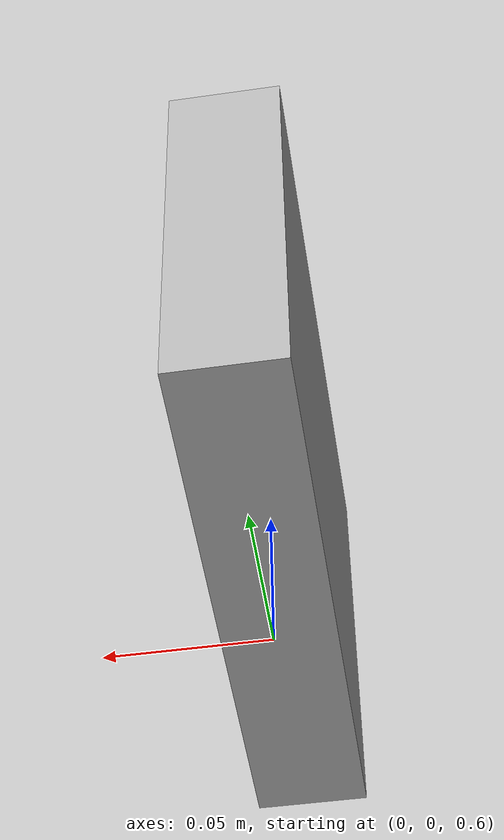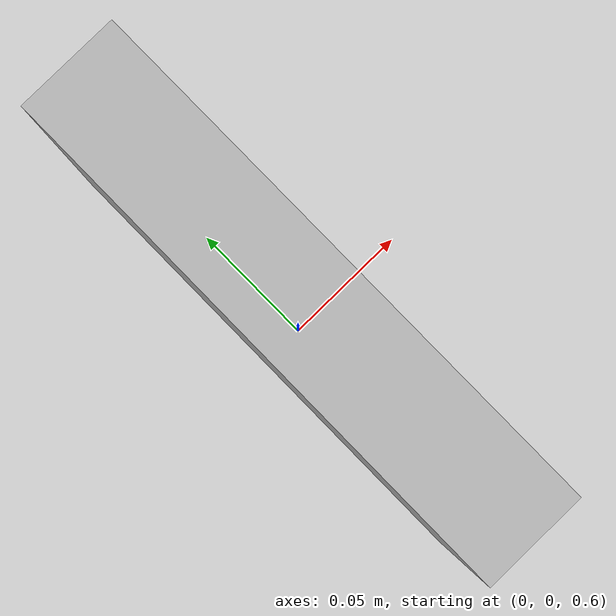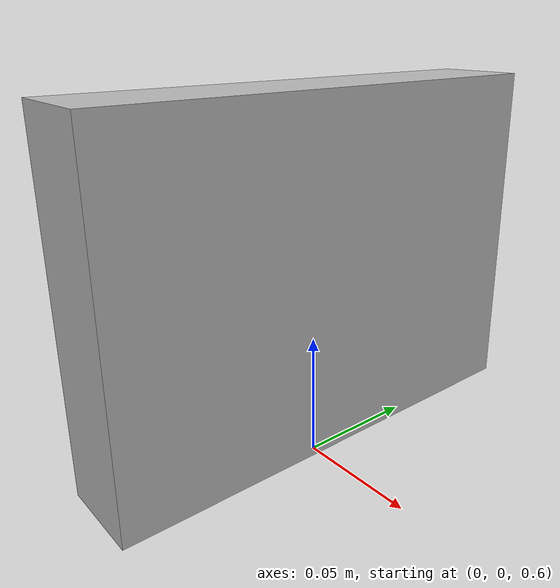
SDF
<sdf version="1.3">
<model name="wlancard">
  <pose>0 0 0.68 -1.57 0.0 1.57</pose>
  <static>false</static>
    <link name="link">
      <inertial>
        <mass>1.0</mass>
        <inertia>
          <ixx>1.0</ixx>
          <ixy>0.0</ixy>
          <ixz>0.0</ixz>
          <iyy>1.0</iyy>
          <iyz>0.0</iyz>
          <izz>1.0</izz>
        </inertia>
      </inertial>
      <collision name="collision">
        <geometry>
          <box>
            <size>0.185 0.135 0.035</size>
          </box>
        </geometry>
      </collision>
      <visual name="visual">
        <geometry>
          <box>
            <size>0.185 0.135 0.035</size>
          </box>
        </geometry>
	<material>
          <script>
            <uri>model://wlancard/materials/scripts</uri>
            <uri>model://wlancard/materials/textures</uri>
            <name>wlancard/Diffuse</name>
          </script>
        </material>

      </visual>
    </link>
  </model>
</sdf>
